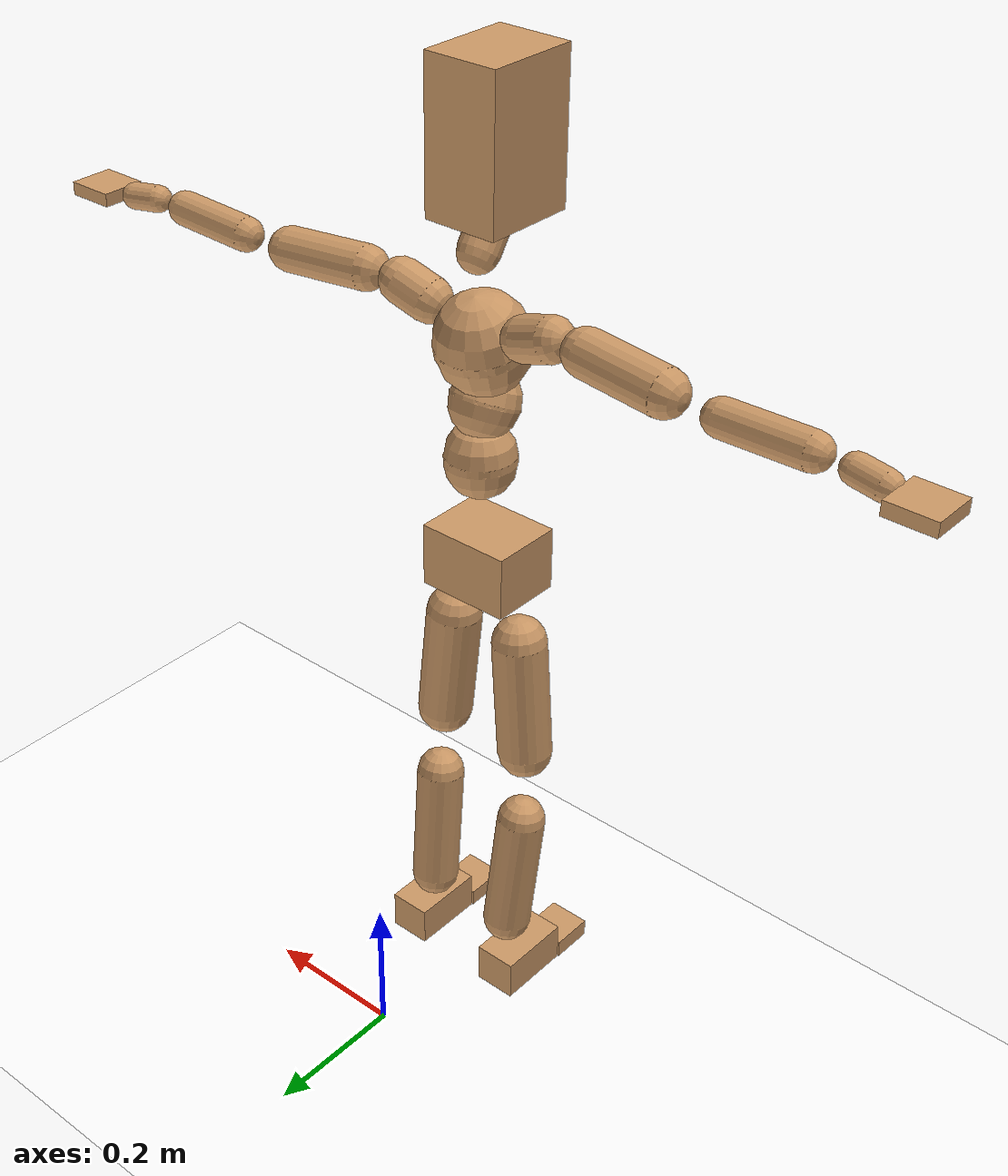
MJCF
<mujoco model="humanoid">
  <option integrator="implicitfast" />

  <visual>
    <global offwidth="1280" offheight="960" />
    <headlight active="1" ambient="0.34 0.34 0.34" diffuse="0.5 0.5 0.5" />
  </visual>

  <default>
    <joint damping="2" stiffness="2" armature="0.01" limited="true" solimplimit="0 .99 .01" />
    <geom condim="1" friction="0.7 0.005 0.0001" solimp=".99 .99 .003" solref="0.015 1" margin="0.001" rgba="0.8 0.6 .4 1" />
    <default class="smplcontact">
      <geom condim="3" friction="1. 0.005 0.0001" solref="0.015 1" solimp="0.98 0.98 0.001" priority="1" />
    </default>
    <default class="stiff_medium">
      <joint stiffness="10" />
    </default>
    <default class="stiff_medium_higher">
      <joint stiffness="50" />
    </default>
    <default class="stiff_high">
      <joint stiffness="100" />
    </default>
  </default>

  <asset>
    <texture type="skybox" builtin="gradient" rgb1="0.99 0.99 0.99" rgb2="0.608 0.828 0.892" width="100" />
    <texture builtin="flat" height="1278" mark="cross" markrgb="1 1 1" name="texgeom" random="0.01" rgb1="0.8 0.6 0.4" rgb2="0.8 0.6 0.4" type="cube" width="127" />
    <texture name="texplane" type="2d" builtin="checker" markrgb="1 1 1" rgb1="0.756 0.772 0.76" rgb2="0.6 0.6 0.6" width="100" height="100" />
    <material name="MatPlane" reflectance="0.5" texture="texplane" texrepeat="1 1" texuniform="true" />
    <material name="geom" texture="texgeom" texuniform="true" />
  </asset>

  <worldbody>
    <light name="tracking_light" pos="0 0 7" dir="0 0 -1" directional="true" cutoff="100" exponent="1" diffuse="1 1 1" specular="0.1 0.1 0.1" mode="trackcom" />
    <camera name="back" pos="0 3 2.4" xyaxes="-1 0 0 0 -1 2" mode="trackcom" />
    <camera name="side" pos="-3 0 2.4" xyaxes="0 -1 0 1 0 2" mode="trackcom" />
    <camera name="front_side" pos="-2.8 -2.8 0.8" xyaxes="0.5 -0.5 0 0.1 0.1 1" mode="trackcom" />
    <geom condim="3" name="floor" pos="0 0 0" rgba="1 1 1 1" size="100 100 .2" type="plane" material="MatPlane" />
    <body name="Pelvis" pos="-0.0018 -0.2233 0.696158" euler="90 0 0">
      <site name="Pelvis" size="0.01" />
      <freejoint name="Pelvis" />
      <geom type="box" pos="-0.0000 -0.0121 -0.0055" size="0.066145 0.0446742 0.0513567" quat="1.0000 0.0000 0.0000 0.0000" density="3165.830099" name="Pelvis" />
      <body name="L_Hip" pos="0.0518422 -0.0681781 -0.00507233">
        <joint name="L_Hip_x" type="hinge" pos="0 0 0" axis="1 0 0" stiffness="10" range="-160.0 22.92" class="stiff_medium" damping="15" />
        <joint name="L_Hip_y" type="hinge" pos="0 0 0" axis="0 1 0" stiffness="10" range="-70.0 70.0" class="stiff_medium" damping="10" />
        <joint name="L_Hip_z" type="hinge" pos="0 0 0" axis="0 0 1" stiffness="10" range="-28.65 90.0" class="stiff_medium" damping="10" />
        <geom type="capsule" density="2040.816327" fromto="0.00514693 -0.0559448 -0.000671338 0.0204385 -0.223929 -0.00268535" size="0.0385997" name="L_Hip" />
        <body name="L_Knee" pos="0.0255854 -0.279873 -0.00335669">
          <joint name="L_Knee_x" type="hinge" pos="0 0 0" axis="1 0 0" range="-5.16 171.89" damping="8" />
          <joint name="L_Knee_y" type="hinge" pos="0 0 0" axis="0 1 0" range="-4.58 6.88" damping="8" />
          <joint name="L_Knee_z" type="hinge" pos="0 0 0" axis="0 0 1" range="-6.88 4.58" damping="8" />
          <geom type="capsule" density="1234.567901" fromto="-0.00201401 -0.0593761 -0.0064896 -0.00813065 -0.237505 -0.0261076" size="0.0339552" name="L_Knee" />
          <body name="L_Ankle" pos="-0.0101447 -0.296881 -0.0325972">
            <joint name="L_Ankle_x" type="hinge" pos="0 0 0" axis="1 0 0" range="-45.84 45.84" class="stiff_medium" damping="6" />
            <joint name="L_Ankle_y" type="hinge" pos="0 0 0" axis="0 1 0" range="-74.48 22.92" class="stiff_medium" damping="3" />
            <joint name="L_Ankle_z" type="hinge" pos="0 0 0" axis="0 0 1" range="-4.58 4.58" class="stiff_medium" damping="6" />
            <geom type="box" pos="0.0173802 -0.0178278 0.0180515" size="0.0303149 0.0291223 0.0533491" quat="1.0000 0.0000 0.0000 0.0000" density="449.071558" name="L_Ankle" class="smplcontact" />
            <body name="L_Toe" pos="0.0196926 -0.041623 0.0889896">
              <joint name="L_Toe_x" type="hinge" pos="0 0 0" axis="1 0 0" range="-91.67 22.92" />
              <joint name="L_Toe_y" type="hinge" pos="0 0 0" axis="0 1 0" range="-4.58 4.58" />
              <joint name="L_Toe_z" type="hinge" pos="0 0 0" axis="0 0 1" range="-4.58 4.58" />
              <geom type="box" pos="-0.00223779 0.00410262 0.0184991" size="0.030001 0.0125527 0.0311308" quat="1.0000 0.0000 0.0000 0.0000" density="423.206892" name="L_Toe" class="smplcontact" />
            </body>
          </body>
        </body>
      </body>
      <body name="R_Hip" pos="-0.0504995 -0.0675068 -0.0032075">
        <joint name="R_Hip_x" type="hinge" pos="0 0 0" axis="1 0 0" stiffness="10" range="-160.0 22.92" class="stiff_medium" damping="15" />
        <joint name="R_Hip_y" type="hinge" pos="0 0 0" axis="0 1 0" stiffness="10" range="-70.0 70.0" class="stiff_medium" damping="10" />
        <joint name="R_Hip_z" type="hinge" pos="0 0 0" axis="0 0 1" stiffness="10" range="-90.0 28.65" class="stiff_medium" damping="10" />
        <geom type="capsule" density="2040.816327" fromto="-0.00574367 -0.0570637 -0.00134268 -0.0228255 -0.22833 -0.00529611" size="0.0380348" name="R_Hip" />
        <body name="R_Knee" pos="-0.0285692 -0.285393 -0.00663879">
          <joint name="R_Knee_x" type="hinge" pos="0 0 0" axis="1 0 0" range="-5.16 171.89" damping="8" />
          <joint name="R_Knee_y" type="hinge" pos="0 0 0" axis="0 1 0" range="-6.88 4.58" damping="8" />
          <joint name="R_Knee_z" type="hinge" pos="0 0 0" axis="0 0 1" range="-4.58 6.88" damping="8" />
          <geom type="capsule" density="1234.567901" fromto="0.00238698 -0.0594507 -0.00634042 0.00939873 -0.237728 -0.0252125" size="0.0339552" name="R_Knee" />
          <body name="R_Ankle" pos="0.0117857 -0.297179 -0.0315529">
            <joint name="R_Ankle_x" type="hinge" pos="0 0 0" axis="1 0 0" range="-45.84 45.84" class="stiff_medium" damping="6" />
            <joint name="R_Ankle_y" type="hinge" pos="0 0 0" axis="0 1 0" range="-22.92 74.48" class="stiff_medium" damping="3" />
            <joint name="R_Ankle_z" type="hinge" pos="0 0 0" axis="0 0 1" range="-4.58 4.58" class="stiff_medium" damping="6" />
            <geom type="box" pos="-0.0158137 -0.0129792 0.0190958" size="0.0303149 0.030001 0.0542906" quat="1.0000 0.0000 0.0000 0.0000" density="434.700981" name="R_Ankle" class="smplcontact" />
            <body name="R_Toe" pos="-0.0189467 -0.0358793 0.0919733">
              <joint name="R_Toe_x" type="hinge" pos="0 0 0" axis="1 0 0" range="-91.67 22.92" />
              <joint name="R_Toe_y" type="hinge" pos="0 0 0" axis="0 1 0" range="-4.58 4.58" />
              <joint name="R_Toe_z" type="hinge" pos="0 0 0" axis="0 0 1" range="-4.58 4.58" />
              <geom type="box" pos="0.00313291 0.00335669 0.0169326" size="0.0300638 0.013557 0.0309425" quat="1.0000 0.0000 0.0000 0.0000" density="407.384095" name="R_Toe" class="smplcontact" />
            </body>
          </body>
        </body>
      </body>
      <body name="Torso" pos="-0.00200416 0.0873812 -0.0214044">
        <joint name="Torso_x" type="hinge" pos="0 0 0" axis="1 0 0" range="-25.78 57.3" class="stiff_medium" damping="15" />
        <joint name="Torso_y" type="hinge" pos="0 0 0" axis="0 1 0" range="-57.3 57.3" class="stiff_high" damping="20" />
        <joint name="Torso_z" type="hinge" pos="0 0 0" axis="0 0 1" range="-34.38 34.38" class="stiff_high" damping="20" />
        <geom type="capsule" density="2040.816327" fromto="0.00200416 0.0487411 0.000400831 0.00240499 0.0595635 0.000480997" size="0.0475823" name="Torso" />
        <body name="Spine" pos="0.00440914 0.108385 0.000881828">
          <joint name="Spine_x" type="hinge" pos="0 0 0" axis="1 0 0" stiffness="10" range="-25.78 57.3" class="stiff_medium" damping="15" />
          <joint name="Spine_y" type="hinge" pos="0 0 0" axis="0 1 0" stiffness="10" range="-57.3 57.3" class="stiff_high" damping="8" />
          <joint name="Spine_z" type="hinge" pos="0 0 0" axis="0 0 1" stiffness="20" range="-34.38 34.38" class="stiff_high" damping="12" />
          <geom type="capsule" density="2040.816327" fromto="0.000561163 0.0190796 0.00913895 0.00064133 0.0233284 0.0112233" size="0.0467161" name="Spine" />
          <body name="Chest" pos="0.00120249 0.0424079 0.0203622">
            <joint name="Chest_x" type="hinge" pos="0 0 0" axis="1 0 0" stiffness="10" range="-25.78 57.3" class="stiff_medium" damping="15" />
            <joint name="Chest_y" type="hinge" pos="0 0 0" axis="0 1 0" stiffness="10" range="-57.3 57.3" class="stiff_high" damping="8" />
            <joint name="Chest_z" type="hinge" pos="0 0 0" axis="0 0 1" stiffness="20" range="-34.38 34.38" class="stiff_high" damping="12" />
            <geom type="capsule" density="2040.816327" fromto="-0.000721496 0.0546734 -0.0138688 -0.000801662 0.0667785 -0.0169952" size="0.0619993" name="Chest" />
            <body name="Neck" pos="-0.00224465 0.171476 -0.0343913">
              <joint name="Neck_x" type="hinge" pos="0 0 0" axis="1 0 0" range="-28.65 57.3" class="stiff_medium_higher" damping="10" />
              <joint name="Neck_y" type="hinge" pos="0 0 0" axis="0 1 0" range="-40.11 40.11" class="stiff_medium_higher" damping="10" />
              <joint name="Neck_z" type="hinge" pos="0 0 0" axis="0 0 1" range="-40.11 40.11" class="stiff_medium_higher" damping="10" />
              <geom type="capsule" density="1000" fromto="0.000801662 0.0104216 0.00825712 0.00328681 0.0416864 0.0329483" size="0.0269778" name="Neck" />
              <body name="Head" pos="0.00501158 0.0626447 0.0494411">
                <joint name="Head_x" type="hinge" pos="0 0 0" axis="1 0 0" range="-28.65 57.3" class="stiff_medium_higher" damping="2" />
                <joint name="Head_y" type="hinge" pos="0 0 0" axis="0 1 0" range="-40.11 40.11" class="stiff_medium_higher" damping="2" />
                <joint name="Head_z" type="hinge" pos="0 0 0" axis="0 0 1" range="-40.11 40.11" class="stiff_medium_higher" damping="2" />
                <geom type="box" pos="-0.00404781 0.0844258 -0.0111797" size="0.0520524 0.0991229 0.0652803" quat="1.0000 0.0000 0.0000 0.0000" density="1018.069894" name="Head" />
                <geom type="capsule" name="nose" size="0.017179 0.00858951" pos="0 0.0674635 0.0481882" quat="1 0 0 0" mass="0" contype="0" conaffinity="0" />
              </body>
            </body>
            <body name="L_Thorax" pos="0.0605583 0.0935272 -0.0262061">
              <joint name="L_Thorax_x" type="hinge" pos="0 0 0" axis="1 0 0" range="-10.89 4.58" class="stiff_medium_higher" damping="20" />
              <joint name="L_Thorax_y" type="hinge" pos="0 0 0" axis="0 1 0" range="-28.65 17.19" class="stiff_medium_higher" damping="20" />
              <joint name="L_Thorax_z" type="hinge" pos="0 0 0" axis="0 0 1" range="-31.51 40.11" class="stiff_medium_higher" damping="20" />
              <geom type="capsule" density="1000" fromto="0.0139868 0.00468789 -0.00138331 0.0559473 0.0187516 -0.00545639" size="0.0300275" name="L_Thorax" />
              <body name="L_Shoulder" pos="0.0699341 0.0234394 -0.00683971">
                <joint name="L_Shoulder_x" type="hinge" pos="0 0 0" axis="1 0 0" range="-97.4 97.4" class="stiff_medium" damping="6" />
                <joint name="L_Shoulder_y" type="hinge" pos="0 0 0" axis="0 1 0" range="-108.86 80.21" class="stiff_medium" damping="6" />
                <joint name="L_Shoulder_z" type="hinge" pos="0 0 0" axis="0 0 1" range="-97.4 85.94" class="stiff_medium" damping="6" />
                <geom type="capsule" density="1000" fromto="0.0398855 -0.00199812 -0.00422678 0.159619 -0.00783876 -0.0169071" size="0.029797" name="L_Shoulder" />
                <body name="L_Elbow" pos="0.199504 -0.00983688 -0.0211339">
                  <joint name="L_Elbow_x" type="hinge" pos="0 0 0" axis="1 0 0" range="-17.19 4.58" damping="5" />
                  <joint name="L_Elbow_y" type="hinge" pos="0 0 0" axis="0 1 0" range="-180.0 17.19" damping="5" />
                  <joint name="L_Elbow_z" type="hinge" pos="0 0 0" axis="0 0 1" range="-100.84 4.58" damping="5" />
                  <geom type="capsule" density="1000" fromto="0.0382716 0.00138331 -0.000153701 0.15324 0.00553325 -0.000691656" size="0.0233419" name="L_Elbow" />
                  <body name="L_Wrist" pos="0.191512 0.00691656 -0.000922208">
                    <joint name="L_Wrist_x" type="hinge" pos="0 0 0" axis="1 0 0" range="-180.0 22.92" />
                    <joint name="L_Wrist_y" type="hinge" pos="0 0 0" axis="0 1 0" range="-17.19 17.19" />
                    <joint name="L_Wrist_z" type="hinge" pos="0 0 0" axis="0 0 1" range="-22.92 22.92" />
                    <geom type="capsule" density="1000" fromto="0.0129109 -0.00122961 -0.00230552 0.0516436 -0.00499529 -0.00922208" size="0.0183277" name="L_Wrist" class="smplcontact" />
                    <body name="L_Hand" pos="0.0645545 -0.00630175 -0.0114507">
                      <joint name="L_Hand_x" type="hinge" pos="0 0 0" axis="1 0 0" range="-17.19 17.19" />
                      <joint name="L_Hand_y" type="hinge" pos="0 0 0" axis="0 1 0" range="-51.57 51.57" />
                      <joint name="L_Hand_z" type="hinge" pos="0 0 0" axis="0 0 1" range="-91.67 91.67" />
                      <geom type="box" pos="0.0378874 0.000768506 -0.00445734" size="0.0337161 0.00910623 0.0310073" quat="1.0000 0.0000 0.0000 0.0000" density="400.552564" name="L_Hand" class="smplcontact" />
                    </body>
                  </body>
                </body>
              </body>
            </body>
            <body name="R_Thorax" pos="-0.0628638 0.0912986 -0.0296643">
              <joint name="R_Thorax_x" type="hinge" pos="0 0 0" axis="1 0 0" range="-10.89 4.58" class="stiff_medium_higher" damping="20" />
              <joint name="R_Thorax_y" type="hinge" pos="0 0 0" axis="0 1 0" range="-17.19 28.65" class="stiff_medium_higher" damping="20" />
              <joint name="R_Thorax_z" type="hinge" pos="0 0 0" axis="0 0 1" range="-40.11 31.51" class="stiff_medium_higher" damping="20" />
              <geom type="capsule" density="1000" fromto="-0.0147553 0.00499529 -0.00138331 -0.0590213 0.0199812 -0.0056101" size="0.0294512" name="R_Thorax" />
              <body name="R_Shoulder" pos="-0.0737766 0.0250533 -0.00699341">
                <joint name="R_Shoulder_x" type="hinge" pos="0 0 0" axis="1 0 0" range="-97.4 97.4" class="stiff_medium" damping="6" />
                <joint name="R_Shoulder_y" type="hinge" pos="0 0 0" axis="0 1 0" range="-80.21 108.86" class="stiff_medium" damping="6" />
                <joint name="R_Shoulder_z" type="hinge" pos="0 0 0" axis="0 0 1" range="-85.94 97.4" class="stiff_medium" damping="6" />
                <geom type="capsule" density="1000" fromto="-0.0389633 -0.00207497 -0.00330458 -0.156007 -0.00822302 -0.0131415" size="0.0306038" name="R_Shoulder" />
                <body name="R_Elbow" pos="-0.19497 -0.0102211 -0.016446">
                  <joint name="R_Elbow_x" type="hinge" pos="0 0 0" axis="1 0 0" range="-17.19 4.58" damping="5" />
                  <joint name="R_Elbow_y" type="hinge" pos="0 0 0" axis="0 1 0" range="-17.19 180.0" damping="5" />
                  <joint name="R_Elbow_z" type="hinge" pos="0 0 0" axis="0 0 1" range="-4.58 100.84" damping="5" />
                  <geom type="capsule" density="1000" fromto="-0.0392707 0.00122961 -0.000845357 -0.156929 0.00476474 -0.00338143" size="0.0235148" name="R_Elbow" />
                  <body name="R_Wrist" pos="-0.1962 0.00599435 -0.00430364">
                    <joint name="R_Wrist_x" type="hinge" pos="0 0 0" axis="1 0 0" range="-180.0 22.92" />
                    <joint name="R_Wrist_y" type="hinge" pos="0 0 0" axis="0 1 0" range="-17.19 17.19" />
                    <joint name="R_Wrist_z" type="hinge" pos="0 0 0" axis="0 0 1" range="-22.92 22.92" />
                    <geom type="capsule" density="1000" fromto="-0.0129878 -0.000922208 -0.00161386 -0.0520279 -0.00376568 -0.0063786" size="0.0187888" name="R_Wrist" class="smplcontact" />
                    <body name="R_Hand" pos="-0.0650156 -0.00468789 -0.00791562">
                      <joint name="R_Hand_x" type="hinge" pos="0 0 0" axis="1 0 0" range="-17.19 17.19" />
                      <joint name="R_Hand_y" type="hinge" pos="0 0 0" axis="0 1 0" range="-51.57 51.57" />
                      <joint name="R_Hand_z" type="hinge" pos="0 0 0" axis="0 0 1" range="-91.67 91.67" />
                      <geom type="box" pos="-0.035505 -0.000691656 -0.0060712" size="0.032794 0.00945204 0.0314684" quat="1.0000 0.0000 0.0000 0.0000" density="403.679611" name="R_Hand" class="smplcontact" />
                    </body>
                  </body>
                </body>
              </body>
            </body>
          </body>
        </body>
      </body>
    </body>
  </worldbody>
  <actuator>
    <general name="L_Hip_x" joint="L_Hip_x" biastype="affine" gainprm="287.33006409732246" biasprm="-215.3247604770444 -180 -2.0" ctrllimited="true" ctrlrange="-1 1" forcerange="-360 360" />
    <general name="L_Hip_y" joint="L_Hip_y" biastype="affine" gainprm="219.9114857512855" biasprm="0.0 -180 -2.0" ctrllimited="true" ctrlrange="-1 1" forcerange="-360 360" />
    <general name="L_Hip_z" joint="L_Hip_z" biastype="affine" gainprm="186.3749841742145" biasprm="96.3683546488669 -180 -2.0" ctrllimited="true" ctrlrange="-1 1" forcerange="-360 360" />
    <general name="L_Knee_x" joint="L_Knee_x" biastype="affine" gainprm="278.10948965903646" biasprm="261.8988715665131 -180 -2.0" ctrllimited="true" ctrlrange="-1 1" forcerange="-360 360" />
    <general name="L_Knee_y" joint="L_Knee_y" biastype="affine" gainprm="18.001325905069514" biasprm="3.612831551628262 -180 -2.0" ctrllimited="true" ctrlrange="-1 1" forcerange="-360 360" />
    <general name="L_Knee_z" joint="L_Knee_z" biastype="affine" gainprm="18.001325905069514" biasprm="-3.612831551628262 -180 -2.0" ctrllimited="true" ctrlrange="-1 1" forcerange="-360 360" />
    <general name="L_Ankle_x" joint="L_Ankle_x" biastype="affine" gainprm="72.00530362027807" biasprm="0.0 -90 -2.0" ctrllimited="true" ctrlrange="-1 1" forcerange="-180 180" />
    <general name="L_Ankle_y" joint="L_Ankle_y" biastype="affine" gainprm="76.49778111491148" biasprm="-40.49512930477244 -90 -2.0" ctrllimited="true" ctrlrange="-1 1" forcerange="-180 180" />
    <general name="L_Ankle_z" joint="L_Ankle_z" biastype="affine" gainprm="7.1942471767206255" biasprm="0.0 -90 -2.0" ctrllimited="true" ctrlrange="-1 1" forcerange="-180 180" />
    <general name="L_Toe_x" joint="L_Toe_x" biastype="affine" gainprm="71.99902043497087" biasprm="-43.19689898685965 -72 -0.8" ctrllimited="true" ctrlrange="-1 1" forcerange="-144 144" />
    <general name="L_Toe_y" joint="L_Toe_y" biastype="affine" gainprm="5.755397741376501" biasprm="0.0 -72 -0.8" ctrllimited="true" ctrlrange="-1 1" forcerange="-144 144" />
    <general name="L_Toe_z" joint="L_Toe_z" biastype="affine" gainprm="5.755397741376501" biasprm="0.0 -72 -0.8" ctrllimited="true" ctrlrange="-1 1" forcerange="-144 144" />
    <general name="R_Hip_x" joint="R_Hip_x" biastype="affine" gainprm="287.33006409732246" biasprm="-215.3247604770444 -180 -2.0" ctrllimited="true" ctrlrange="-1 1" forcerange="-360 360" />
    <general name="R_Hip_y" joint="R_Hip_y" biastype="affine" gainprm="219.9114857512855" biasprm="0.0 -180 -2.0" ctrllimited="true" ctrlrange="-1 1" forcerange="-360 360" />
    <general name="R_Hip_z" joint="R_Hip_z" biastype="affine" gainprm="186.3749841742145" biasprm="-96.3683546488669 -180 -2.0" ctrllimited="true" ctrlrange="-1 1" forcerange="-360 360" />
    <general name="R_Knee_x" joint="R_Knee_x" biastype="affine" gainprm="278.10948965903646" biasprm="261.8988715665131 -180 -2.0" ctrllimited="true" ctrlrange="-1 1" forcerange="-360 360" />
    <general name="R_Knee_y" joint="R_Knee_y" biastype="affine" gainprm="18.001325905069514" biasprm="-3.612831551628262 -180 -2.0" ctrllimited="true" ctrlrange="-1 1" forcerange="-360 360" />
    <general name="R_Knee_z" joint="R_Knee_z" biastype="affine" gainprm="18.001325905069514" biasprm="3.612831551628262 -180 -2.0" ctrllimited="true" ctrlrange="-1 1" forcerange="-360 360" />
    <general name="R_Ankle_x" joint="R_Ankle_x" biastype="affine" gainprm="72.00530362027807" biasprm="0.0 -90 -2.0" ctrllimited="true" ctrlrange="-1 1" forcerange="-180 180" />
    <general name="R_Ankle_y" joint="R_Ankle_y" biastype="affine" gainprm="76.49778111491148" biasprm="40.49512930477244 -90 -2.0" ctrllimited="true" ctrlrange="-1 1" forcerange="-180 180" />
    <general name="R_Ankle_z" joint="R_Ankle_z" biastype="affine" gainprm="7.1942471767206255" biasprm="0.0 -90 -2.0" ctrllimited="true" ctrlrange="-1 1" forcerange="-180 180" />
    <general name="R_Toe_x" joint="R_Toe_x" biastype="affine" gainprm="71.99902043497087" biasprm="-43.19689898685965 -72 -0.8" ctrllimited="true" ctrlrange="-1 1" forcerange="-144 144" />
    <general name="R_Toe_y" joint="R_Toe_y" biastype="affine" gainprm="5.755397741376501" biasprm="0.0 -72 -0.8" ctrllimited="true" ctrlrange="-1 1" forcerange="-144 144" />
    <general name="R_Toe_z" joint="R_Toe_z" biastype="affine" gainprm="5.755397741376501" biasprm="0.0 -72 -0.8" ctrllimited="true" ctrlrange="-1 1" forcerange="-144 144" />
    <general name="Torso_x" joint="Torso_x" biastype="affine" gainprm="174.00234510682668" biasprm="66.0153336274335 -240 -4.0" ctrllimited="true" ctrlrange="-1 1" forcerange="-360 360" />
    <general name="Torso_y" joint="Torso_y" biastype="affine" gainprm="240.0176787342602" biasprm="0.0 -240 -4.0" ctrllimited="true" ctrlrange="-1 1" forcerange="-360 360" />
    <general name="Torso_z" joint="Torso_z" biastype="affine" gainprm="144.01060724055614" biasprm="0.0 -240 -4.0" ctrllimited="true" ctrlrange="-1 1" forcerange="-360 360" />
    <general name="Spine_x" joint="Spine_x" biastype="affine" gainprm="174.00234510682668" biasprm="66.0153336274335 -240 -4.0" ctrllimited="true" ctrlrange="-1 1" forcerange="-360 360" />
    <general name="Spine_y" joint="Spine_y" biastype="affine" gainprm="240.0176787342602" biasprm="0.0 -240 -4.0" ctrllimited="true" ctrlrange="-1 1" forcerange="-360 360" />
    <general name="Spine_z" joint="Spine_z" biastype="affine" gainprm="144.01060724055614" biasprm="0.0 -240 -4.0" ctrllimited="true" ctrlrange="-1 1" forcerange="-360 360" />
    <general name="Chest_x" joint="Chest_x" biastype="affine" gainprm="174.00234510682668" biasprm="66.0153336274335 -240 -4.0" ctrllimited="true" ctrlrange="-1 1" forcerange="-360 360" />
    <general name="Chest_y" joint="Chest_y" biastype="affine" gainprm="240.0176787342602" biasprm="0.0 -240 -4.0" ctrllimited="true" ctrlrange="-1 1" forcerange="-360 360" />
    <general name="Chest_z" joint="Chest_z" biastype="affine" gainprm="144.01060724055614" biasprm="0.0 -240 -4.0" ctrllimited="true" ctrlrange="-1 1" forcerange="-360 360" />
    <general name="Neck_x" joint="Neck_x" biastype="affine" gainprm="27.00198885760427" biasprm="9.000662952534757 -36 -0.8" ctrllimited="true" ctrlrange="-1 1" forcerange="-72 72" />
    <general name="Neck_y" joint="Neck_y" biastype="affine" gainprm="25.20185626709732" biasprm="0.0 -36 -0.8" ctrllimited="true" ctrlrange="-1 1" forcerange="-72 72" />
    <general name="Neck_z" joint="Neck_z" biastype="affine" gainprm="25.20185626709732" biasprm="0.0 -36 -0.8" ctrllimited="true" ctrlrange="-1 1" forcerange="-72 72" />
    <general name="Head_x" joint="Head_x" biastype="affine" gainprm="18.001325905069514" biasprm="6.000441968356505 -24 -0.8" ctrllimited="true" ctrlrange="-1 1" forcerange="-48 48" />
    <general name="Head_y" joint="Head_y" biastype="affine" gainprm="16.801237511398213" biasprm="0.0 -24 -0.8" ctrllimited="true" ctrlrange="-1 1" forcerange="-48 48" />
    <general name="Head_z" joint="Head_z" biastype="affine" gainprm="16.801237511398213" biasprm="0.0 -24 -0.8" ctrllimited="true" ctrlrange="-1 1" forcerange="-48 48" />
    <general name="L_Thorax_x" joint="L_Thorax_x" biastype="affine" gainprm="16.200146117011364" biasprm="-6.6078165480505335 -120 -1.6" ctrllimited="true" ctrlrange="-1 1" forcerange="-240 240" />
    <general name="L_Thorax_y" joint="L_Thorax_y" biastype="affine" gainprm="48.00353574685204" biasprm="-12.00088393671301 -120 -1.6" ctrllimited="true" ctrlrange="-1 1" forcerange="-240 240" />
    <general name="L_Thorax_z" joint="L_Thorax_z" biastype="affine" gainprm="75.00028861670033" biasprm="9.00589894029074 -120 -1.6" ctrllimited="true" ctrlrange="-1 1" forcerange="-240 240" />
    <general name="L_Shoulder_x" joint="L_Shoulder_x" biastype="affine" gainprm="81.5976331892389" biasprm="0.0 -48 -1.6" ctrllimited="true" ctrlrange="-1 1" forcerange="-96 96" />
    <general name="L_Shoulder_y" joint="L_Shoulder_y" biastype="affine" gainprm="79.19745640189629" biasprm="-12.00088393671301 -48 -1.6" ctrllimited="true" ctrlrange="-1 1" forcerange="-96 96" />
    <general name="L_Shoulder_z" joint="L_Shoulder_z" biastype="affine" gainprm="76.79727961455369" biasprm="-4.800353574685214 -48 -1.6" ctrllimited="true" ctrlrange="-1 1" forcerange="-96 96" />
    <general name="L_Elbow_x" joint="L_Elbow_x" biastype="affine" gainprm="13.67849441372996" biasprm="-7.923096672353461 -72 -0.8" ctrllimited="true" ctrlrange="-1 1" forcerange="-144 144" />
    <general name="L_Elbow_y" joint="L_Elbow_y" biastype="affine" gainprm="123.89813107227425" biasprm="-102.29653998619085 -72 -0.8" ctrllimited="true" ctrlrange="-1 1" forcerange="-144 144" />
    <general name="L_Elbow_z" joint="L_Elbow_z" biastype="affine" gainprm="66.23733950828719" biasprm="-60.4819417669107 -72 -0.8" ctrllimited="true" ctrlrange="-1 1" forcerange="-144 144" />
    <general name="L_Wrist_x" joint="L_Wrist_x" biastype="affine" gainprm="21.24973270888136" biasprm="-16.449379134196157 -12 -0.8" ctrllimited="true" ctrlrange="-1 1" forcerange="-24 24" />
    <general name="L_Wrist_y" joint="L_Wrist_y" biastype="affine" gainprm="3.6002651810139037" biasprm="0.0 -12 -0.8" ctrllimited="true" ctrlrange="-1 1" forcerange="-24 24" />
    <general name="L_Wrist_z" joint="L_Wrist_z" biastype="affine" gainprm="4.800353574685205" biasprm="0.0 -12 -0.8" ctrllimited="true" ctrlrange="-1 1" forcerange="-24 24" />
    <general name="L_Hand_x" joint="L_Hand_x" biastype="affine" gainprm="3.6002651810139037" biasprm="0.0 -12 -0.8" ctrllimited="true" ctrlrange="-1 1" forcerange="-24 24" />
    <general name="L_Hand_y" joint="L_Hand_y" biastype="affine" gainprm="10.800795543041708" biasprm="0.0 -12 -0.8" ctrllimited="true" ctrlrange="-1 1" forcerange="-24 24" />
    <general name="L_Hand_z" joint="L_Hand_z" biastype="affine" gainprm="19.199319903638422" biasprm="0.0 -12 -0.8" ctrllimited="true" ctrlrange="-1 1" forcerange="-24 24" />
    <general name="R_Thorax_x" joint="R_Thorax_x" biastype="affine" gainprm="16.200146117011364" biasprm="-6.6078165480505335 -120 -1.6" ctrllimited="true" ctrlrange="-1 1" forcerange="-240 240" />
    <general name="R_Thorax_y" joint="R_Thorax_y" biastype="affine" gainprm="48.00353574685204" biasprm="12.000883936713002 -120 -1.6" ctrllimited="true" ctrlrange="-1 1" forcerange="-240 240" />
    <general name="R_Thorax_z" joint="R_Thorax_z" biastype="affine" gainprm="75.00028861670033" biasprm="-9.00589894029074 -120 -1.6" ctrllimited="true" ctrlrange="-1 1" forcerange="-240 240" />
    <general name="R_Shoulder_x" joint="R_Shoulder_x" biastype="affine" gainprm="81.5976331892389" biasprm="0.0 -48 -1.6" ctrllimited="true" ctrlrange="-1 1" forcerange="-96 96" />
    <general name="R_Shoulder_y" joint="R_Shoulder_y" biastype="affine" gainprm="79.19745640189629" biasprm="12.00088393671301 -48 -1.6" ctrllimited="true" ctrlrange="-1 1" forcerange="-96 96" />
    <general name="R_Shoulder_z" joint="R_Shoulder_z" biastype="affine" gainprm="76.79727961455369" biasprm="4.800353574685204 -48 -1.6" ctrllimited="true" ctrlrange="-1 1" forcerange="-96 96" />
    <general name="R_Elbow_x" joint="R_Elbow_x" biastype="affine" gainprm="13.67849441372996" biasprm="-7.923096672353461 -72 -0.8" ctrllimited="true" ctrlrange="-1 1" forcerange="-144 144" />
    <general name="R_Elbow_y" joint="R_Elbow_y" biastype="affine" gainprm="123.89813107227425" biasprm="102.29653998619085 -72 -0.8" ctrllimited="true" ctrlrange="-1 1" forcerange="-144 144" />
    <general name="R_Elbow_z" joint="R_Elbow_z" biastype="affine" gainprm="66.23733950828719" biasprm="60.481941766910694 -72 -0.8" ctrllimited="true" ctrlrange="-1 1" forcerange="-144 144" />
    <general name="R_Wrist_x" joint="R_Wrist_x" biastype="affine" gainprm="21.24973270888136" biasprm="-16.449379134196157 -12 -0.8" ctrllimited="true" ctrlrange="-1 1" forcerange="-24 24" />
    <general name="R_Wrist_y" joint="R_Wrist_y" biastype="affine" gainprm="3.6002651810139037" biasprm="0.0 -12 -0.8" ctrllimited="true" ctrlrange="-1 1" forcerange="-24 24" />
    <general name="R_Wrist_z" joint="R_Wrist_z" biastype="affine" gainprm="4.800353574685205" biasprm="0.0 -12 -0.8" ctrllimited="true" ctrlrange="-1 1" forcerange="-24 24" />
    <general name="R_Hand_x" joint="R_Hand_x" biastype="affine" gainprm="3.6002651810139037" biasprm="0.0 -12 -0.8" ctrllimited="true" ctrlrange="-1 1" forcerange="-24 24" />
    <general name="R_Hand_y" joint="R_Hand_y" biastype="affine" gainprm="10.800795543041708" biasprm="0.0 -12 -0.8" ctrllimited="true" ctrlrange="-1 1" forcerange="-24 24" />
    <general name="R_Hand_z" joint="R_Hand_z" biastype="affine" gainprm="19.199319903638422" biasprm="0.0 -12 -0.8" ctrllimited="true" ctrlrange="-1 1" forcerange="-24 24" />
  </actuator>
  <contact>
    <exclude body1="Torso" body2="Chest" />
    <exclude body1="Head" body2="Chest" />
    <exclude body1="R_Knee" body2="R_Toe" />
    <exclude body1="R_Knee" body2="L_Ankle" />
    <exclude body1="R_Knee" body2="L_Toe" />
    <exclude body1="L_Knee" body2="L_Toe" />
    <exclude body1="L_Knee" body2="R_Ankle" />
    <exclude body1="L_Knee" body2="R_Toe" />
    <exclude body1="L_Shoulder" body2="Chest" />
    <exclude body1="R_Shoulder" body2="Chest" />
  </contact>
  <sensor>
    <framelinvel name="sensor_Pelvis_framelinvel" objtype="xbody" objname="Pelvis" />
    <framelinvel name="sensor_L_Hip_framelinvel" objtype="xbody" objname="L_Hip" />
    <framelinvel name="sensor_L_Knee_framelinvel" objtype="xbody" objname="L_Knee" />
    <framelinvel name="sensor_L_Ankle_framelinvel" objtype="xbody" objname="L_Ankle" />
    <framelinvel name="sensor_L_Toe_framelinvel" objtype="xbody" objname="L_Toe" />
    <framelinvel name="sensor_R_Hip_framelinvel" objtype="xbody" objname="R_Hip" />
    <framelinvel name="sensor_R_Knee_framelinvel" objtype="xbody" objname="R_Knee" />
    <framelinvel name="sensor_R_Ankle_framelinvel" objtype="xbody" objname="R_Ankle" />
    <framelinvel name="sensor_R_Toe_framelinvel" objtype="xbody" objname="R_Toe" />
    <framelinvel name="sensor_Torso_framelinvel" objtype="xbody" objname="Torso" />
    <framelinvel name="sensor_Spine_framelinvel" objtype="xbody" objname="Spine" />
    <framelinvel name="sensor_Chest_framelinvel" objtype="xbody" objname="Chest" />
    <framelinvel name="sensor_Neck_framelinvel" objtype="xbody" objname="Neck" />
    <framelinvel name="sensor_Head_framelinvel" objtype="xbody" objname="Head" />
    <framelinvel name="sensor_L_Thorax_framelinvel" objtype="xbody" objname="L_Thorax" />
    <framelinvel name="sensor_L_Shoulder_framelinvel" objtype="xbody" objname="L_Shoulder" />
    <framelinvel name="sensor_L_Elbow_framelinvel" objtype="xbody" objname="L_Elbow" />
    <framelinvel name="sensor_L_Wrist_framelinvel" objtype="xbody" objname="L_Wrist" />
    <framelinvel name="sensor_L_Hand_framelinvel" objtype="xbody" objname="L_Hand" />
    <framelinvel name="sensor_R_Thorax_framelinvel" objtype="xbody" objname="R_Thorax" />
    <framelinvel name="sensor_R_Shoulder_framelinvel" objtype="xbody" objname="R_Shoulder" />
    <framelinvel name="sensor_R_Elbow_framelinvel" objtype="xbody" objname="R_Elbow" />
    <framelinvel name="sensor_R_Wrist_framelinvel" objtype="xbody" objname="R_Wrist" />
    <framelinvel name="sensor_R_Hand_framelinvel" objtype="xbody" objname="R_Hand" />
    <frameangvel name="sensor_Pelvis_frameangvel" objtype="xbody" objname="Pelvis" />
    <frameangvel name="sensor_L_Hip_frameangvel" objtype="xbody" objname="L_Hip" />
    <frameangvel name="sensor_L_Knee_frameangvel" objtype="xbody" objname="L_Knee" />
    <frameangvel name="sensor_L_Ankle_frameangvel" objtype="xbody" objname="L_Ankle" />
    <frameangvel name="sensor_L_Toe_frameangvel" objtype="xbody" objname="L_Toe" />
    <frameangvel name="sensor_R_Hip_frameangvel" objtype="xbody" objname="R_Hip" />
    <frameangvel name="sensor_R_Knee_frameangvel" objtype="xbody" objname="R_Knee" />
    <frameangvel name="sensor_R_Ankle_frameangvel" objtype="xbody" objname="R_Ankle" />
    <frameangvel name="sensor_R_Toe_frameangvel" objtype="xbody" objname="R_Toe" />
    <frameangvel name="sensor_Torso_frameangvel" objtype="xbody" objname="Torso" />
    <frameangvel name="sensor_Spine_frameangvel" objtype="xbody" objname="Spine" />
    <frameangvel name="sensor_Chest_frameangvel" objtype="xbody" objname="Chest" />
    <frameangvel name="sensor_Neck_frameangvel" objtype="xbody" objname="Neck" />
    <frameangvel name="sensor_Head_frameangvel" objtype="xbody" objname="Head" />
    <frameangvel name="sensor_L_Thorax_frameangvel" objtype="xbody" objname="L_Thorax" />
    <frameangvel name="sensor_L_Shoulder_frameangvel" objtype="xbody" objname="L_Shoulder" />
    <frameangvel name="sensor_L_Elbow_frameangvel" objtype="xbody" objname="L_Elbow" />
    <frameangvel name="sensor_L_Wrist_frameangvel" objtype="xbody" objname="L_Wrist" />
    <frameangvel name="sensor_L_Hand_frameangvel" objtype="xbody" objname="L_Hand" />
    <frameangvel name="sensor_R_Thorax_frameangvel" objtype="xbody" objname="R_Thorax" />
    <frameangvel name="sensor_R_Shoulder_frameangvel" objtype="xbody" objname="R_Shoulder" />
    <frameangvel name="sensor_R_Elbow_frameangvel" objtype="xbody" objname="R_Elbow" />
    <frameangvel name="sensor_R_Wrist_frameangvel" objtype="xbody" objname="R_Wrist" />
    <frameangvel name="sensor_R_Hand_frameangvel" objtype="xbody" objname="R_Hand" />
    <subtreelinvel name="Chest_subtreelinvel" body="Chest" />
    <gyro name="Pelvis_gyro" site="Pelvis" />
  </sensor>
</mujoco>
